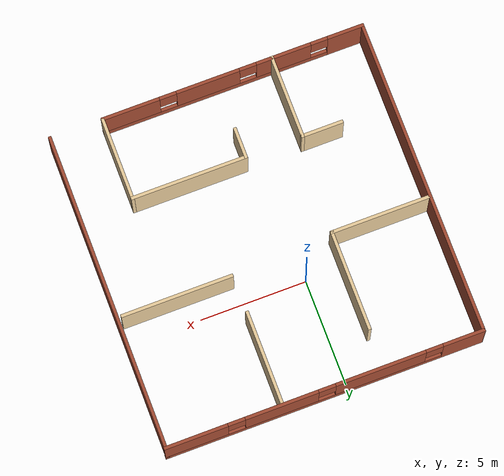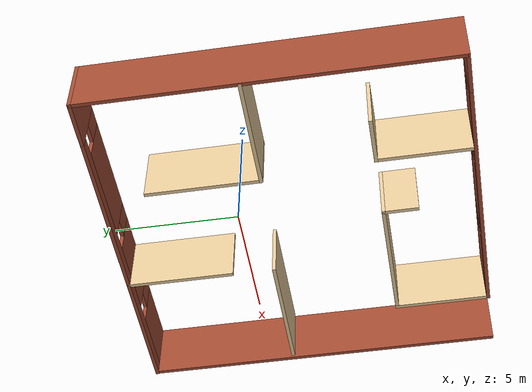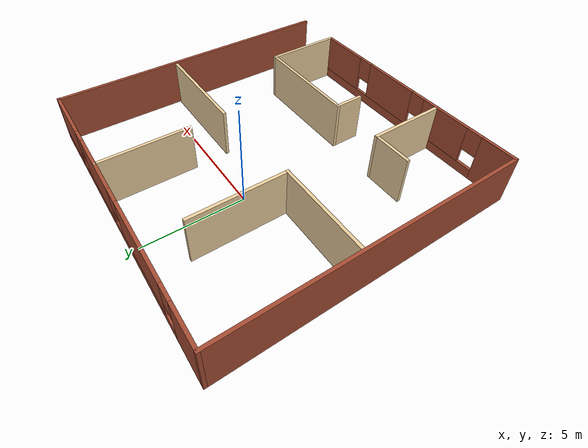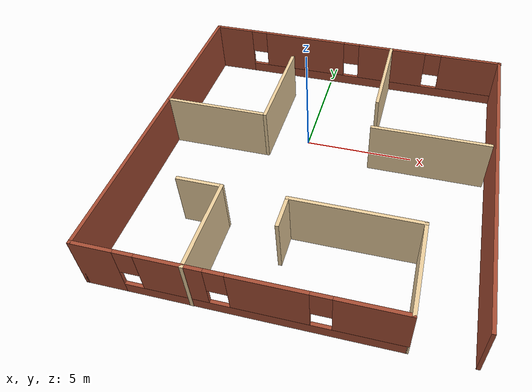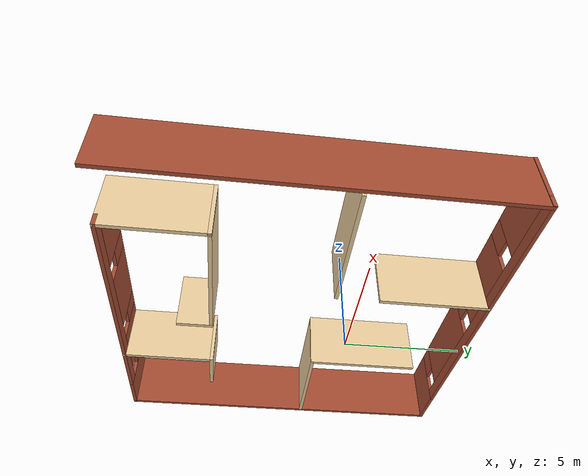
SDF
<?xml version='1.0'?>
<sdf version='1.7'>
  <model name='gMaze7'>
    <pose>1.11307 -2.17489 0 0 -0 0</pose>
    <link name='Wall_0'>
      <pose>0 7.42919 0 0 -0 0</pose>
      <visual name='Wall_0_Visual_0'>
        <pose>-6.50945 0 1.25 0 -0 0</pose>
        <geometry>
          <box>
            <size>1.98109 0.15 2.5</size>
          </box>
        </geometry>
        <material>
          <script>
            <uri>file://media/materials/scripts/gazebo.material</uri>
            <name>Gazebo/Bricks</name>
          </script>
          <ambient>1 1 1 1</ambient>
        </material>
        <meta>
          <layer>0</layer>
        </meta>
      </visual>
      <collision name='Wall_0_Collision_0'>
        <geometry>
          <box>
            <size>1.98109 0.15 2.5</size>
          </box>
        </geometry>
        <pose>-6.50945 0 1.25 0 -0 0</pose>
      </collision>
      <visual name='Wall_0_Visual_1'>
        <pose>0.990545 0 0.25 0 -0 0</pose>
        <geometry>
          <box>
            <size>13.0189 0.15 0.5</size>
          </box>
        </geometry>
        <material>
          <script>
            <uri>file://media/materials/scripts/gazebo.material</uri>
            <name>Gazebo/Bricks</name>
          </script>
          <ambient>1 1 1 1</ambient>
        </material>
        <meta>
          <layer>0</layer>
        </meta>
      </visual>
      <collision name='Wall_0_Collision_1'>
        <geometry>
          <box>
            <size>13.0189 0.15 0.5</size>
          </box>
        </geometry>
        <pose>0.990545 0 0.25 0 -0 0</pose>
      </collision>
      <visual name='Wall_0_Visual_2'>
        <pose>-2.60363 0 1.5 0 -0 0</pose>
        <geometry>
          <box>
            <size>4.23056 0.15 2</size>
          </box>
        </geometry>
        <material>
          <script>
            <uri>file://media/materials/scripts/gazebo.material</uri>
            <name>Gazebo/Bricks</name>
          </script>
          <ambient>1 1 1 1</ambient>
        </material>
        <meta>
          <layer>0</layer>
        </meta>
      </visual>
      <collision name='Wall_0_Collision_2'>
        <geometry>
          <box>
            <size>4.23056 0.15 2</size>
          </box>
        </geometry>
        <pose>-2.60363 0 1.5 0 -0 0</pose>
      </collision>
      <visual name='Wall_0_Visual_3'>
        <pose>2.02238 0 1.5 0 -0 0</pose>
        <geometry>
          <box>
            <size>3.42145 0.15 2</size>
          </box>
        </geometry>
        <material>
          <script>
            <uri>file://media/materials/scripts/gazebo.material</uri>
            <name>Gazebo/Bricks</name>
          </script>
          <ambient>1 1 1 1</ambient>
        </material>
        <meta>
          <layer>0</layer>
        </meta>
      </visual>
      <collision name='Wall_0_Collision_3'>
        <geometry>
          <box>
            <size>3.42145 0.15 2</size>
          </box>
        </geometry>
        <pose>2.02238 0 1.5 0 -0 0</pose>
      </collision>
      <visual name='Wall_0_Visual_4'>
        <pose>6.01655 0 1.5 0 -0 0</pose>
        <geometry>
          <box>
            <size>2.9669 0.15 2</size>
          </box>
        </geometry>
        <material>
          <script>
            <uri>file://media/materials/scripts/gazebo.material</uri>
            <name>Gazebo/Bricks</name>
          </script>
          <ambient>1 1 1 1</ambient>
        </material>
        <meta>
          <layer>0</layer>
        </meta>
      </visual>
      <collision name='Wall_0_Collision_4'>
        <geometry>
          <box>
            <size>2.9669 0.15 2</size>
          </box>
        </geometry>
        <pose>6.01655 0 1.5 0 -0 0</pose>
      </collision>
      <visual name='Wall_0_Visual_5'>
        <pose>-5.11891 0 1.9 0 -0 0</pose>
        <geometry>
          <box>
            <size>0.8 0.15 1.2</size>
          </box>
        </geometry>
        <material>
          <script>
            <uri>file://media/materials/scripts/gazebo.material</uri>
            <name>Gazebo/Bricks</name>
          </script>
          <ambient>1 1 1 1</ambient>
        </material>
        <meta>
          <layer>0</layer>
        </meta>
      </visual>
      <collision name='Wall_0_Collision_5'>
        <geometry>
          <box>
            <size>0.8 0.15 1.2</size>
          </box>
        </geometry>
        <pose>-5.11891 0 1.9 0 -0 0</pose>
      </collision>
      <visual name='Wall_0_Visual_6'>
        <pose>-0.088347 0 1.9 0 -0 0</pose>
        <geometry>
          <box>
            <size>0.8 0.15 1.2</size>
          </box>
        </geometry>
        <material>
          <script>
            <uri>file://media/materials/scripts/gazebo.material</uri>
            <name>Gazebo/Bricks</name>
          </script>
          <ambient>1 1 1 1</ambient>
        </material>
        <meta>
          <layer>0</layer>
        </meta>
      </visual>
      <collision name='Wall_0_Collision_6'>
        <geometry>
          <box>
            <size>0.8 0.15 1.2</size>
          </box>
        </geometry>
        <pose>-0.088347 0 1.9 0 -0 0</pose>
      </collision>
      <visual name='Wall_0_Visual_7'>
        <pose>4.1331 0 1.9 0 -0 0</pose>
        <geometry>
          <box>
            <size>0.8 0.15 1.2</size>
          </box>
        </geometry>
        <material>
          <script>
            <uri>file://media/materials/scripts/gazebo.material</uri>
            <name>Gazebo/Bricks</name>
          </script>
          <ambient>1 1 1 1</ambient>
        </material>
        <meta>
          <layer>0</layer>
        </meta>
      </visual>
      <collision name='Wall_0_Collision_7'>
        <geometry>
          <box>
            <size>0.8 0.15 1.2</size>
          </box>
        </geometry>
        <pose>4.1331 0 1.9 0 -0 0</pose>
      </collision>
    </link>
    <link name='Wall_1'>
      <collision name='Wall_1_Collision'>
        <geometry>
          <box>
            <size>15 0.15 2.5</size>
          </box>
        </geometry>
        <pose>0 0 1.25 0 -0 0</pose>
      </collision>
      <visual name='Wall_1_Visual'>
        <pose>0 0 1.25 0 -0 0</pose>
        <geometry>
          <box>
            <size>15 0.15 2.5</size>
          </box>
        </geometry>
        <material>
          <script>
            <uri>file://media/materials/scripts/gazebo.material</uri>
            <name>Gazebo/Bricks</name>
          </script>
          <ambient>1 1 1 1</ambient>
        </material>
        <meta>
          <layer>0</layer>
        </meta>
      </visual>
      <pose>7.40489 0.00419 0 0 -0 -1.5708</pose>
    </link>
    <link name='Wall_3'>
      <collision name='Wall_3_Collision'>
        <geometry>
          <box>
            <size>15 0.15 2.5</size>
          </box>
        </geometry>
        <pose>0 0 1.25 0 -0 0</pose>
      </collision>
      <visual name='Wall_3_Visual'>
        <pose>0 0 1.25 0 -0 0</pose>
        <geometry>
          <box>
            <size>15 0.15 2.5</size>
          </box>
        </geometry>
        <material>
          <script>
            <uri>file://media/materials/scripts/gazebo.material</uri>
            <name>Gazebo/Bricks</name>
          </script>
          <ambient>1 1 1 1</ambient>
        </material>
        <meta>
          <layer>0</layer>
        </meta>
      </visual>
      <pose>-7.425 0.00419 0 0 -0 -1.5708</pose>
    </link>
    <link name='Wall_4'>
      <pose>-1.25 -7.42081 0 0 -0 0</pose>
      <visual name='Wall_4_Visual_0'>
        <pose>-5.37558 0 1.25 0 -0 0</pose>
        <geometry>
          <box>
            <size>1.74884 0.15 2.5</size>
          </box>
        </geometry>
        <material>
          <script>
            <uri>file://media/materials/scripts/gazebo.material</uri>
            <name>Gazebo/Bricks</name>
          </script>
          <ambient>1 1 1 1</ambient>
        </material>
        <meta>
          <layer>0</layer>
        </meta>
      </visual>
      <collision name='Wall_4_Collision_0'>
        <geometry>
          <box>
            <size>1.74884 0.15 2.5</size>
          </box>
        </geometry>
        <pose>-5.37558 0 1.25 0 -0 0</pose>
      </collision>
      <visual name='Wall_4_Visual_1'>
        <pose>0.87442 0 0.25 0 -0 0</pose>
        <geometry>
          <box>
            <size>10.7512 0.15 0.5</size>
          </box>
        </geometry>
        <material>
          <script>
            <uri>file://media/materials/scripts/gazebo.material</uri>
            <name>Gazebo/Bricks</name>
          </script>
          <ambient>1 1 1 1</ambient>
        </material>
        <meta>
          <layer>0</layer>
        </meta>
      </visual>
      <collision name='Wall_4_Collision_1'>
        <geometry>
          <box>
            <size>10.7512 0.15 0.5</size>
          </box>
        </geometry>
        <pose>0.87442 0 0.25 0 -0 0</pose>
      </collision>
      <visual name='Wall_4_Visual_2'>
        <pose>-2.40199 0 1.5 0 -0 0</pose>
        <geometry>
          <box>
            <size>2.59834 0.15 2</size>
          </box>
        </geometry>
        <material>
          <script>
            <uri>file://media/materials/scripts/gazebo.material</uri>
            <name>Gazebo/Bricks</name>
          </script>
          <ambient>1 1 1 1</ambient>
        </material>
        <meta>
          <layer>0</layer>
        </meta>
      </visual>
      <collision name='Wall_4_Collision_2'>
        <geometry>
          <box>
            <size>2.59834 0.15 2</size>
          </box>
        </geometry>
        <pose>-2.40199 0 1.5 0 -0 0</pose>
      </collision>
      <visual name='Wall_4_Visual_3'>
        <pose>1.19683 0 1.5 0 -0 0</pose>
        <geometry>
          <box>
            <size>2.99931 0.15 2</size>
          </box>
        </geometry>
        <material>
          <script>
            <uri>file://media/materials/scripts/gazebo.material</uri>
            <name>Gazebo/Bricks</name>
          </script>
          <ambient>1 1 1 1</ambient>
        </material>
        <meta>
          <layer>0</layer>
        </meta>
      </visual>
      <collision name='Wall_4_Collision_3'>
        <geometry>
          <box>
            <size>2.99931 0.15 2</size>
          </box>
        </geometry>
        <pose>1.19683 0 1.5 0 -0 0</pose>
      </collision>
      <visual name='Wall_4_Visual_4'>
        <pose>4.87324 0 1.5 0 -0 0</pose>
        <geometry>
          <box>
            <size>2.75352 0.15 2</size>
          </box>
        </geometry>
        <material>
          <script>
            <uri>file://media/materials/scripts/gazebo.material</uri>
            <name>Gazebo/Bricks</name>
          </script>
          <ambient>1 1 1 1</ambient>
        </material>
        <meta>
          <layer>0</layer>
        </meta>
      </visual>
      <collision name='Wall_4_Collision_4'>
        <geometry>
          <box>
            <size>2.75352 0.15 2</size>
          </box>
        </geometry>
        <pose>4.87324 0 1.5 0 -0 0</pose>
      </collision>
      <visual name='Wall_4_Visual_5'>
        <pose>-4.10116 0 1.9 0 -0 0</pose>
        <geometry>
          <box>
            <size>0.8 0.15 1.2</size>
          </box>
        </geometry>
        <material>
          <script>
            <uri>file://media/materials/scripts/gazebo.material</uri>
            <name>Gazebo/Bricks</name>
          </script>
          <ambient>1 1 1 1</ambient>
        </material>
        <meta>
          <layer>0</layer>
        </meta>
      </visual>
      <collision name='Wall_4_Collision_5'>
        <geometry>
          <box>
            <size>0.8 0.15 1.2</size>
          </box>
        </geometry>
        <pose>-4.10116 0 1.9 0 -0 0</pose>
      </collision>
      <visual name='Wall_4_Visual_6'>
        <pose>-0.702821 0 1.9 0 -0 0</pose>
        <geometry>
          <box>
            <size>0.8 0.15 1.2</size>
          </box>
        </geometry>
        <material>
          <script>
            <uri>file://media/materials/scripts/gazebo.material</uri>
            <name>Gazebo/Bricks</name>
          </script>
          <ambient>1 1 1 1</ambient>
        </material>
        <meta>
          <layer>0</layer>
        </meta>
      </visual>
      <collision name='Wall_4_Collision_6'>
        <geometry>
          <box>
            <size>0.8 0.15 1.2</size>
          </box>
        </geometry>
        <pose>-0.702821 0 1.9 0 -0 0</pose>
      </collision>
      <visual name='Wall_4_Visual_7'>
        <pose>3.09648 0 1.9 0 -0 0</pose>
        <geometry>
          <box>
            <size>0.8 0.15 1.2</size>
          </box>
        </geometry>
        <material>
          <script>
            <uri>file://media/materials/scripts/gazebo.material</uri>
            <name>Gazebo/Bricks</name>
          </script>
          <ambient>1 1 1 1</ambient>
        </material>
        <meta>
          <layer>0</layer>
        </meta>
      </visual>
      <collision name='Wall_4_Collision_7'>
        <geometry>
          <box>
            <size>0.8 0.15 1.2</size>
          </box>
        </geometry>
        <pose>3.09648 0 1.9 0 -0 0</pose>
      </collision>
    </link>
    <link name='Wall_56'>
      <collision name='Wall_56_Collision'>
        <geometry>
          <box>
            <size>4 0.15 2.5</size>
          </box>
        </geometry>
        <pose>0 0 1.25 0 -0 0</pose>
      </collision>
      <visual name='Wall_56_Visual'>
        <pose>0 0 1.25 0 -0 0</pose>
        <geometry>
          <box>
            <size>4 0.15 2.5</size>
          </box>
        </geometry>
        <material>
          <script>
            <uri>file://media/materials/scripts/gazebo.material</uri>
            <name>Gazebo/Grey</name>
          </script>
          <ambient>0.921569 0.807843 0.615686 1</ambient>
        </material>
        <meta>
          <layer>0</layer>
        </meta>
      </visual>
      <pose>4.925 -5.49581 0 0 -0 1.5708</pose>
    </link>
    <link name='Wall_57'>
      <collision name='Wall_57_Collision'>
        <geometry>
          <box>
            <size>5.5 0.15 2.5</size>
          </box>
        </geometry>
        <pose>0 0 1.25 0 -0 0</pose>
      </collision>
      <visual name='Wall_57_Visual'>
        <pose>0 0 1.25 0 -0 0</pose>
        <geometry>
          <box>
            <size>5.5 0.15 2.5</size>
          </box>
        </geometry>
        <material>
          <script>
            <uri>file://media/materials/scripts/gazebo.material</uri>
            <name>Gazebo/Grey</name>
          </script>
          <ambient>0.921569 0.807843 0.615686 1</ambient>
        </material>
        <meta>
          <layer>0</layer>
        </meta>
      </visual>
      <pose>2.25 -3.57081 0 0 -0 3.14159</pose>
    </link>
    <link name='Wall_58'>
      <collision name='Wall_58_Collision'>
        <geometry>
          <box>
            <size>1.5 0.15 2.5</size>
          </box>
        </geometry>
        <pose>0 0 1.25 0 -0 0</pose>
      </collision>
      <visual name='Wall_58_Visual'>
        <pose>0 0 1.25 0 -0 0</pose>
        <geometry>
          <box>
            <size>1.5 0.15 2.5</size>
          </box>
        </geometry>
        <material>
          <script>
            <uri>file://media/materials/scripts/gazebo.material</uri>
            <name>Gazebo/Grey</name>
          </script>
          <ambient>0.921569 0.807843 0.615686 1</ambient>
        </material>
        <meta>
          <layer>0</layer>
        </meta>
      </visual>
      <pose>-0.425 -4.24581 0 0 -0 -1.5708</pose>
    </link>
    <link name='Wall_60'>
      <collision name='Wall_60_Collision'>
        <geometry>
          <box>
            <size>4 0.15 2.5</size>
          </box>
        </geometry>
        <pose>0 0 1.25 0 -0 0</pose>
      </collision>
      <visual name='Wall_60_Visual'>
        <pose>0 0 1.25 0 -0 0</pose>
        <geometry>
          <box>
            <size>4 0.15 2.5</size>
          </box>
        </geometry>
        <material>
          <script>
            <uri>file://media/materials/scripts/gazebo.material</uri>
            <name>Gazebo/Grey</name>
          </script>
          <ambient>0.921569 0.807843 0.615686 1</ambient>
        </material>
        <meta>
          <layer>0</layer>
        </meta>
      </visual>
      <pose>-3.11372 -5.50419 0 0 -0 1.5708</pose>
    </link>
    <link name='Wall_61'>
      <collision name='Wall_61_Collision'>
        <geometry>
          <box>
            <size>2 0.15 2.5</size>
          </box>
        </geometry>
        <pose>0 0 1.25 0 -0 0</pose>
      </collision>
      <visual name='Wall_61_Visual'>
        <pose>0 0 1.25 0 -0 0</pose>
        <geometry>
          <box>
            <size>2 0.15 2.5</size>
          </box>
        </geometry>
        <material>
          <script>
            <uri>file://media/materials/scripts/gazebo.material</uri>
            <name>Gazebo/Grey</name>
          </script>
          <ambient>0.921569 0.807843 0.615686 1</ambient>
        </material>
        <meta>
          <layer>0</layer>
        </meta>
      </visual>
      <pose>-4.03872 -3.57919 0 0 -0 3.14159</pose>
    </link>
    <link name='Wall_64'>
      <collision name='Wall_64_Collision'>
        <geometry>
          <box>
            <size>4.75 0.15 2.5</size>
          </box>
        </geometry>
        <pose>0 0 1.25 0 -0 0</pose>
      </collision>
      <visual name='Wall_64_Visual'>
        <pose>0 0 1.25 0 -0 0</pose>
        <geometry>
          <box>
            <size>4.75 0.15 2.5</size>
          </box>
        </geometry>
        <material>
          <script>
            <uri>file://media/materials/scripts/gazebo.material</uri>
            <name>Gazebo/Grey</name>
          </script>
          <ambient>0.921569 0.807843 0.615686 1</ambient>
        </material>
        <meta>
          <layer>0</layer>
        </meta>
      </visual>
      <pose>-5.07035 0.978534 0 0 -0 0</pose>
    </link>
    <link name='Wall_65'>
      <collision name='Wall_65_Collision'>
        <geometry>
          <box>
            <size>4.75 0.15 2.5</size>
          </box>
        </geometry>
        <pose>0 0 1.25 0 -0 0</pose>
      </collision>
      <visual name='Wall_65_Visual'>
        <pose>0 0 1.25 0 -0 0</pose>
        <geometry>
          <box>
            <size>4.75 0.15 2.5</size>
          </box>
        </geometry>
        <material>
          <script>
            <uri>file://media/materials/scripts/gazebo.material</uri>
            <name>Gazebo/Grey</name>
          </script>
          <ambient>0.921569 0.807843 0.615686 1</ambient>
        </material>
        <meta>
          <layer>0</layer>
        </meta>
      </visual>
      <pose>-2.77035 3.27853 0 0 -0 1.5708</pose>
    </link>
    <link name='Wall_67'>
      <collision name='Wall_67_Collision'>
        <geometry>
          <box>
            <size>5.25 0.15 2.5</size>
          </box>
        </geometry>
        <pose>0 0 1.25 0 -0 0</pose>
      </collision>
      <visual name='Wall_67_Visual'>
        <pose>0 0 1.25 0 -0 0</pose>
        <geometry>
          <box>
            <size>5.25 0.15 2.5</size>
          </box>
        </geometry>
        <material>
          <script>
            <uri>file://media/materials/scripts/gazebo.material</uri>
            <name>Gazebo/Grey</name>
          </script>
          <ambient>0.921569 0.807843 0.615686 1</ambient>
        </material>
        <meta>
          <layer>0</layer>
        </meta>
      </visual>
      <pose>4.60756 1.25996 0 0 -0 0</pose>
    </link>
    <link name='Wall_69'>
      <collision name='Wall_69_Collision'>
        <geometry>
          <box>
            <size>4.5 0.15 2.5</size>
          </box>
        </geometry>
        <pose>0 0 1.25 0 -0 0</pose>
      </collision>
      <visual name='Wall_69_Visual'>
        <pose>0 0 1.25 0 -0 0</pose>
        <geometry>
          <box>
            <size>4.5 0.15 2.5</size>
          </box>
        </geometry>
        <material>
          <script>
            <uri>file://media/materials/scripts/gazebo.material</uri>
            <name>Gazebo/Grey</name>
          </script>
          <ambient>0.921569 0.807843 0.615686 1</ambient>
        </material>
        <meta>
          <layer>0</layer>
        </meta>
      </visual>
      <pose>1.9872 5.22908 0 0 -0 1.5708</pose>
    </link>
    <static>1</static>
  </model>
</sdf>
